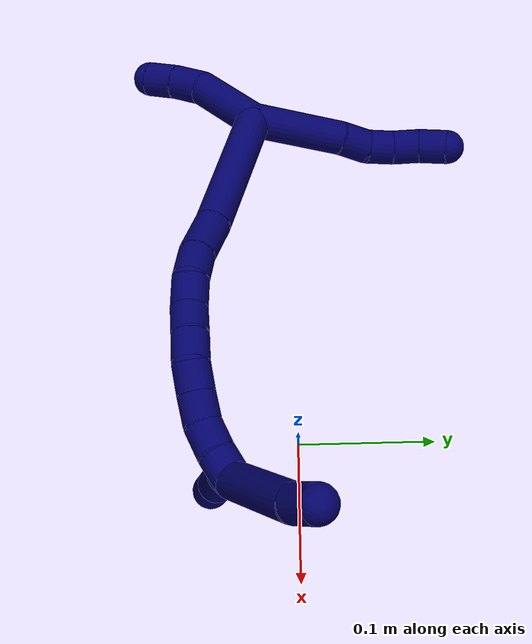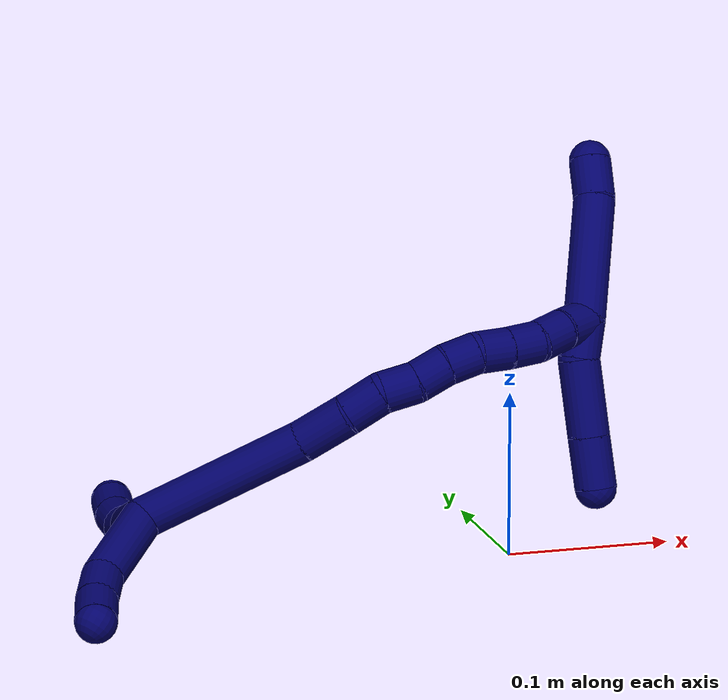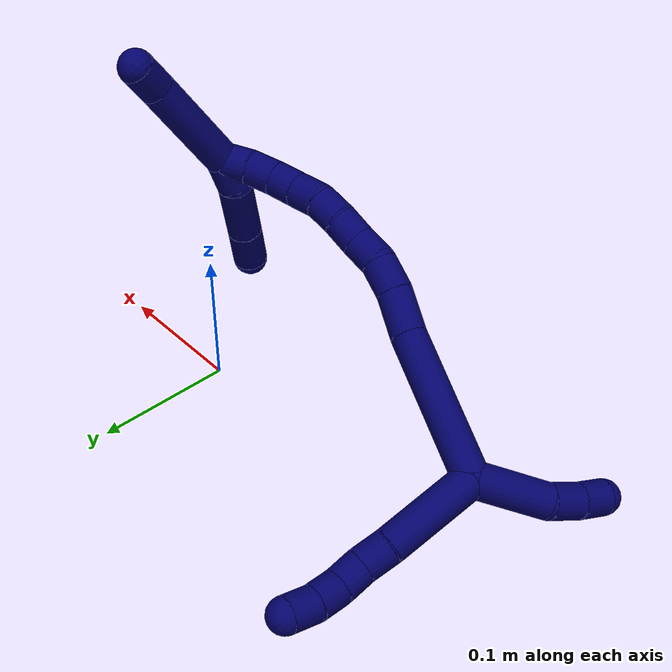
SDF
<sdf version="1.7">
 <world name="default">
  <model name="7">
   <static>0</static>
   <link name="7">
    <collision name="collision-cylinder-e_1_2_8">
     <pose>0.005574 0.033004 0.003979 -1.45082 0.166141 -0.147387</pose>
     <geometry><cylinder><radius>0.0125</radius><length>0.067415</length></cylinder></geometry>
     <surface>
      <friction><ode><mu>1.16</mu><mu2>1.16</mu2><slip1>0</slip1><slip2>0</slip2></ode></friction>
      <contact><ode><kp>1e+06</kp><kd>1</kd><max_vel>0</max_vel><min_depth>0.001</min_depth></ode></contact>
     </surface>
    </collision>
    <visual name="visual-cylinder-e_1_2_8">
     <pose>0.005574 0.033004 0.003979 -1.45082 0.166141 -0.147387</pose>
     <geometry><cylinder><radius>0.0125</radius><length>0.067415</length></cylinder></geometry>
     <material><ambient>0.003922 0 0.403922 1</ambient></material>
    </visual>
    <collision name="collision-cylinder-e_2_8_9">
     <pose>0.014061 0.076219 0.009411 -1.42937 0.275207 -0.239172</pose>
     <geometry><cylinder><radius>0.0125</radius><length>0.021435</length></cylinder></geometry>
     <surface>
      <friction><ode><mu>1.16</mu><mu2>1.16</mu2><slip1>0</slip1><slip2>0</slip2></ode></friction>
      <contact><ode><kp>1e+06</kp><kd>1</kd><max_vel>0</max_vel><min_depth>0.001</min_depth></ode></contact>
     </surface>
    </collision>
    <visual name="visual-cylinder-e_2_8_9">
     <pose>0.014061 0.076219 0.009411 -1.42937 0.275207 -0.239172</pose>
     <geometry><cylinder><radius>0.0125</radius><length>0.021435</length></cylinder></geometry>
     <material><ambient>0.003922 0 0.403922 1</ambient></material>
    </visual>
    <collision name="collision-cylinder-e_3_9_10">
     <pose>0.017008 0.096363 0.012212 -1.43602 0.003439 -0.003004</pose>
     <geometry><cylinder><radius>0.0125</radius><length>0.020046</length></cylinder></geometry>
     <surface>
      <friction><ode><mu>1.16</mu><mu2>1.16</mu2><slip1>0</slip1><slip2>0</slip2></ode></friction>
      <contact><ode><kp>1e+06</kp><kd>1</kd><max_vel>0</max_vel><min_depth>0.001</min_depth></ode></contact>
     </surface>
    </collision>
    <visual name="visual-cylinder-e_3_9_10">
     <pose>0.017008 0.096363 0.012212 -1.43602 0.003439 -0.003004</pose>
     <geometry><cylinder><radius>0.0125</radius><length>0.020046</length></cylinder></geometry>
     <material><ambient>0.003922 0 0.403922 1</ambient></material>
    </visual>
    <collision name="collision-cylinder-e_4_10_11">
     <pose>0.015273 0.115678 0.016942 -1.22468 -0.175541 0.123462</pose>
     <geometry><cylinder><radius>0.0125</radius><length>0.02026</length></cylinder></geometry>
     <surface>
      <friction><ode><mu>1.16</mu><mu2>1.16</mu2><slip1>0</slip1><slip2>0</slip2></ode></friction>
      <contact><ode><kp>1e+06</kp><kd>1</kd><max_vel>0</max_vel><min_depth>0.001</min_depth></ode></contact>
     </surface>
    </collision>
    <visual name="visual-cylinder-e_4_10_11">
     <pose>0.015273 0.115678 0.016942 -1.22468 -0.175541 0.123462</pose>
     <geometry><cylinder><radius>0.0125</radius><length>0.02026</length></cylinder></geometry>
     <material><ambient>0.003922 0 0.403922 1</ambient></material>
    </visual>
    <collision name="collision-cylinder-e_5_11_6">
     <pose>0.012136 0.133953 0.025587 -1.03655 -0.131645 0.075146</pose>
     <geometry><cylinder><radius>0.0125</radius><length>0.020844</length></cylinder></geometry>
     <surface>
      <friction><ode><mu>1.16</mu><mu2>1.16</mu2><slip1>0</slip1><slip2>0</slip2></ode></friction>
      <contact><ode><kp>1e+06</kp><kd>1</kd><max_vel>0</max_vel><min_depth>0.001</min_depth></ode></contact>
     </surface>
    </collision>
    <visual name="visual-cylinder-e_5_11_6">
     <pose>0.012136 0.133953 0.025587 -1.03655 -0.131645 0.075146</pose>
     <geometry><cylinder><radius>0.0125</radius><length>0.020844</length></cylinder></geometry>
     <material><ambient>0.003922 0 0.403922 1</ambient></material>
    </visual>
    <collision name="collision-cylinder-e_1_2_12">
     <pose>-0.004449 -0.012965 -0.023829 2.64329 -0.162564 -0.619699</pose>
     <geometry><cylinder><radius>0.0125</radius><length>0.054981</length></cylinder></geometry>
     <surface>
      <friction><ode><mu>1.16</mu><mu2>1.16</mu2><slip1>0</slip1><slip2>0</slip2></ode></friction>
      <contact><ode><kp>1e+06</kp><kd>1</kd><max_vel>0</max_vel><min_depth>0.001</min_depth></ode></contact>
     </surface>
    </collision>
    <visual name="visual-cylinder-e_1_2_12">
     <pose>-0.004449 -0.012965 -0.023829 2.64329 -0.162564 -0.619699</pose>
     <geometry><cylinder><radius>0.0125</radius><length>0.054981</length></cylinder></geometry>
     <material><ambient>0.003922 0 0.403922 1</ambient></material>
    </visual>
    <collision name="collision-cylinder-e_2_12_13">
     <pose>-0.008609 -0.033915 -0.056178 2.38869 0.024761 0.062622</pose>
     <geometry><cylinder><radius>0.0125</radius><length>0.02336</length></cylinder></geometry>
     <surface>
      <friction><ode><mu>1.16</mu><mu2>1.16</mu2><slip1>0</slip1><slip2>0</slip2></ode></friction>
      <contact><ode><kp>1e+06</kp><kd>1</kd><max_vel>0</max_vel><min_depth>0.001</min_depth></ode></contact>
     </surface>
    </collision>
    <visual name="visual-cylinder-e_2_12_13">
     <pose>-0.008609 -0.033915 -0.056178 2.38869 0.024761 0.062622</pose>
     <geometry><cylinder><radius>0.0125</radius><length>0.02336</length></cylinder></geometry>
     <material><ambient>0.003922 0 0.403922 1</ambient></material>
    </visual>
    <collision name="collision-cylinder-e_3_13_5">
     <pose>-0.00722 -0.050051 -0.071742 2.28336 0.101751 0.221663</pose>
     <geometry><cylinder><radius>0.0125</radius><length>0.02166</length></cylinder></geometry>
     <surface>
      <friction><ode><mu>1.16</mu><mu2>1.16</mu2><slip1>0</slip1><slip2>0</slip2></ode></friction>
      <contact><ode><kp>1e+06</kp><kd>1</kd><max_vel>0</max_vel><min_depth>0.001</min_depth></ode></contact>
     </surface>
    </collision>
    <visual name="visual-cylinder-e_3_13_5">
     <pose>-0.00722 -0.050051 -0.071742 2.28336 0.101751 0.221663</pose>
     <geometry><cylinder><radius>0.0125</radius><length>0.02166</length></cylinder></geometry>
     <material><ambient>0.003922 0 0.403922 1</ambient></material>
    </visual>
    <collision name="collision-cylinder-e_1_2_14">
     <pose>0.023391 -0.024458 0.039447 0.55501 0.466815 0.135237</pose>
     <geometry><cylinder><radius>0.0125</radius><length>0.10395</length></cylinder></geometry>
     <surface>
      <friction><ode><mu>1.16</mu><mu2>1.16</mu2><slip1>0</slip1><slip2>0</slip2></ode></friction>
      <contact><ode><kp>1e+06</kp><kd>1</kd><max_vel>0</max_vel><min_depth>0.001</min_depth></ode></contact>
     </surface>
    </collision>
    <visual name="visual-cylinder-e_1_2_14">
     <pose>0.023391 -0.024458 0.039447 0.55501 0.466815 0.135237</pose>
     <geometry><cylinder><radius>0.0125</radius><length>0.10395</length></cylinder></geometry>
     <material><ambient>0.003922 0 0.403922 1</ambient></material>
    </visual>
    <collision name="collision-cylinder-e_2_14_15">
     <pose>0.05232 -0.057308 0.090945 0.608321 0.360614 0.114315</pose>
     <geometry><cylinder><radius>0.0125</radius><length>0.03139</length></cylinder></geometry>
     <surface>
      <friction><ode><mu>1.16</mu><mu2>1.16</mu2><slip1>0</slip1><slip2>0</slip2></ode></friction>
      <contact><ode><kp>1e+06</kp><kd>1</kd><max_vel>0</max_vel><min_depth>0.001</min_depth></ode></contact>
     </surface>
    </collision>
    <visual name="visual-cylinder-e_2_14_15">
     <pose>0.05232 -0.057308 0.090945 0.608321 0.360614 0.114315</pose>
     <geometry><cylinder><radius>0.0125</radius><length>0.03139</length></cylinder></geometry>
     <material><ambient>0.003922 0 0.403922 1</ambient></material>
    </visual>
    <collision name="collision-cylinder-e_3_15_16">
     <pose>0.062248 -0.0701 0.112858 0.419598 0.386079 0.083197</pose>
     <geometry><cylinder><radius>0.0125</radius><length>0.023315</length></cylinder></geometry>
     <surface>
      <friction><ode><mu>1.16</mu><mu2>1.16</mu2><slip1>0</slip1><slip2>0</slip2></ode></friction>
      <contact><ode><kp>1e+06</kp><kd>1</kd><max_vel>0</max_vel><min_depth>0.001</min_depth></ode></contact>
     </surface>
    </collision>
    <visual name="visual-cylinder-e_3_15_16">
     <pose>0.062248 -0.0701 0.112858 0.419598 0.386079 0.083197</pose>
     <geometry><cylinder><radius>0.0125</radius><length>0.023315</length></cylinder></geometry>
     <material><ambient>0.003922 0 0.403922 1</ambient></material>
    </visual>
    <collision name="collision-cylinder-e_4_16_17">
     <pose>0.073455 -0.076599 0.130631 0.259377 0.694538 0.094338</pose>
     <geometry><cylinder><radius>0.0125</radius><length>0.021304</length></cylinder></geometry>
     <surface>
      <friction><ode><mu>1.16</mu><mu2>1.16</mu2><slip1>0</slip1><slip2>0</slip2></ode></friction>
      <contact><ode><kp>1e+06</kp><kd>1</kd><max_vel>0</max_vel><min_depth>0.001</min_depth></ode></contact>
     </surface>
    </collision>
    <visual name="visual-cylinder-e_4_16_17">
     <pose>0.073455 -0.076599 0.130631 0.259377 0.694538 0.094338</pose>
     <geometry><cylinder><radius>0.0125</radius><length>0.021304</length></cylinder></geometry>
     <material><ambient>0.003922 0 0.403922 1</ambient></material>
    </visual>
    <collision name="collision-cylinder-e_5_17_18">
     <pose>0.084815 -0.080361 0.147311 0.187417 0.47075 0.045071</pose>
     <geometry><cylinder><radius>0.0125</radius><length>0.020029</length></cylinder></geometry>
     <surface>
      <friction><ode><mu>1.16</mu><mu2>1.16</mu2><slip1>0</slip1><slip2>0</slip2></ode></friction>
      <contact><ode><kp>1e+06</kp><kd>1</kd><max_vel>0</max_vel><min_depth>0.001</min_depth></ode></contact>
     </surface>
    </collision>
    <visual name="visual-cylinder-e_5_17_18">
     <pose>0.084815 -0.080361 0.147311 0.187417 0.47075 0.045071</pose>
     <geometry><cylinder><radius>0.0125</radius><length>0.020029</length></cylinder></geometry>
     <material><ambient>0.003922 0 0.403922 1</ambient></material>
    </visual>
    <collision name="collision-cylinder-e_6_18_19">
     <pose>0.095257 -0.083431 0.164031 0.175068 0.631076 0.057281</pose>
     <geometry><cylinder><radius>0.0125</radius><length>0.020001</length></cylinder></geometry>
     <surface>
      <friction><ode><mu>1.16</mu><mu2>1.16</mu2><slip1>0</slip1><slip2>0</slip2></ode></friction>
      <contact><ode><kp>1e+06</kp><kd>1</kd><max_vel>0</max_vel><min_depth>0.001</min_depth></ode></contact>
     </surface>
    </collision>
    <visual name="visual-cylinder-e_6_18_19">
     <pose>0.095257 -0.083431 0.164031 0.175068 0.631076 0.057281</pose>
     <geometry><cylinder><radius>0.0125</radius><length>0.020001</length></cylinder></geometry>
     <material><ambient>0.003922 0 0.403922 1</ambient></material>
    </visual>
    <collision name="collision-cylinder-e_7_19_20">
     <pose>0.108687 -0.084286 0.178546 -0.083682 0.852009 -0.037992</pose>
     <geometry><cylinder><radius>0.0125</radius><length>0.020008</length></cylinder></geometry>
     <surface>
      <friction><ode><mu>1.16</mu><mu2>1.16</mu2><slip1>0</slip1><slip2>0</slip2></ode></friction>
      <contact><ode><kp>1e+06</kp><kd>1</kd><max_vel>0</max_vel><min_depth>0.001</min_depth></ode></contact>
     </surface>
    </collision>
    <visual name="visual-cylinder-e_7_19_20">
     <pose>0.108687 -0.084286 0.178546 -0.083682 0.852009 -0.037992</pose>
     <geometry><cylinder><radius>0.0125</radius><length>0.020008</length></cylinder></geometry>
     <material><ambient>0.003922 0 0.403922 1</ambient></material>
    </visual>
    <collision name="collision-cylinder-e_8_20_21">
     <pose>0.123299 -0.082969 0.19213 -0.108866 0.786924 -0.045228</pose>
     <geometry><cylinder><radius>0.0125</radius><length>0.020002</length></cylinder></geometry>
     <surface>
      <friction><ode><mu>1.16</mu><mu2>1.16</mu2><slip1>0</slip1><slip2>0</slip2></ode></friction>
      <contact><ode><kp>1e+06</kp><kd>1</kd><max_vel>0</max_vel><min_depth>0.001</min_depth></ode></contact>
     </surface>
    </collision>
    <visual name="visual-cylinder-e_8_20_21">
     <pose>0.123299 -0.082969 0.19213 -0.108866 0.786924 -0.045228</pose>
     <geometry><cylinder><radius>0.0125</radius><length>0.020002</length></cylinder></geometry>
     <material><ambient>0.003922 0 0.403922 1</ambient></material>
    </visual>
    <collision name="collision-cylinder-e_9_21_22">
     <pose>0.135757 -0.0798 0.207233 -0.288823 0.56749 -0.084764</pose>
     <geometry><cylinder><radius>0.0125</radius><length>0.02</length></cylinder></geometry>
     <surface>
      <friction><ode><mu>1.16</mu><mu2>1.16</mu2><slip1>0</slip1><slip2>0</slip2></ode></friction>
      <contact><ode><kp>1e+06</kp><kd>1</kd><max_vel>0</max_vel><min_depth>0.001</min_depth></ode></contact>
     </surface>
    </collision>
    <visual name="visual-cylinder-e_9_21_22">
     <pose>0.135757 -0.0798 0.207233 -0.288823 0.56749 -0.084764</pose>
     <geometry><cylinder><radius>0.0125</radius><length>0.02</length></cylinder></geometry>
     <material><ambient>0.003922 0 0.403922 1</ambient></material>
    </visual>
    <collision name="collision-cylinder-e_10_22_1">
     <pose>0.146666 -0.073729 0.222794 -0.456099 0.586491 -0.139929</pose>
     <geometry><cylinder><radius>0.0125</radius><length>0.020001</length></cylinder></geometry>
     <surface>
      <friction><ode><mu>1.16</mu><mu2>1.16</mu2><slip1>0</slip1><slip2>0</slip2></ode></friction>
      <contact><ode><kp>1e+06</kp><kd>1</kd><max_vel>0</max_vel><min_depth>0.001</min_depth></ode></contact>
     </surface>
    </collision>
    <visual name="visual-cylinder-e_10_22_1">
     <pose>0.146666 -0.073729 0.222794 -0.456099 0.586491 -0.139929</pose>
     <geometry><cylinder><radius>0.0125</radius><length>0.020001</length></cylinder></geometry>
     <material><ambient>0.003922 0 0.403922 1</ambient></material>
    </visual>
    <collision name="collision-cylinder-e_1_1_23">
     <pose>0.156993 -0.068703 0.219895 -3.0115 0.429436 -2.56107</pose>
     <geometry><cylinder><radius>0.0125</radius><length>0.02302</length></cylinder></geometry>
     <surface>
      <friction><ode><mu>1.16</mu><mu2>1.16</mu2><slip1>0</slip1><slip2>0</slip2></ode></friction>
      <contact><ode><kp>1e+06</kp><kd>1</kd><max_vel>0</max_vel><min_depth>0.001</min_depth></ode></contact>
     </surface>
    </collision>
    <visual name="visual-cylinder-e_1_1_23">
     <pose>0.156993 -0.068703 0.219895 -3.0115 0.429436 -2.56107</pose>
     <geometry><cylinder><radius>0.0125</radius><length>0.02302</length></cylinder></geometry>
     <material><ambient>0.003922 0 0.403922 1</ambient></material>
    </visual>
    <collision name="collision-cylinder-e_2_23_24">
     <pose>0.177031 -0.064454 0.192546 -2.97284 0.724751 -2.70262</pose>
     <geometry><cylinder><radius>0.0125</radius><length>0.045994</length></cylinder></geometry>
     <surface>
      <friction><ode><mu>1.16</mu><mu2>1.16</mu2><slip1>0</slip1><slip2>0</slip2></ode></friction>
      <contact><ode><kp>1e+06</kp><kd>1</kd><max_vel>0</max_vel><min_depth>0.001</min_depth></ode></contact>
     </surface>
    </collision>
    <visual name="visual-cylinder-e_2_23_24">
     <pose>0.177031 -0.064454 0.192546 -2.97284 0.724751 -2.70262</pose>
     <geometry><cylinder><radius>0.0125</radius><length>0.045994</length></cylinder></geometry>
     <material><ambient>0.003922 0 0.403922 1</ambient></material>
    </visual>
    <collision name="collision-cylinder-e_3_24_4">
     <pose>0.202652 -0.059528 0.164248 -2.96385 0.733702 -2.68586</pose>
     <geometry><cylinder><radius>0.0125</radius><length>0.030986</length></cylinder></geometry>
     <surface>
      <friction><ode><mu>1.16</mu><mu2>1.16</mu2><slip1>0</slip1><slip2>0</slip2></ode></friction>
      <contact><ode><kp>1e+06</kp><kd>1</kd><max_vel>0</max_vel><min_depth>0.001</min_depth></ode></contact>
     </surface>
    </collision>
    <visual name="visual-cylinder-e_3_24_4">
     <pose>0.202652 -0.059528 0.164248 -2.96385 0.733702 -2.68586</pose>
     <geometry><cylinder><radius>0.0125</radius><length>0.030986</length></cylinder></geometry>
     <material><ambient>0.003922 0 0.403922 1</ambient></material>
    </visual>
    <collision name="collision-cylinder-e_1_1_25">
     <pose>0.138203 -0.063563 0.264886 -0.185553 -0.378319 0.035622</pose>
     <geometry><cylinder><radius>0.0125</radius><length>0.075799</length></cylinder></geometry>
     <surface>
      <friction><ode><mu>1.16</mu><mu2>1.16</mu2><slip1>0</slip1><slip2>0</slip2></ode></friction>
      <contact><ode><kp>1e+06</kp><kd>1</kd><max_vel>0</max_vel><min_depth>0.001</min_depth></ode></contact>
     </surface>
    </collision>
    <visual name="visual-cylinder-e_1_1_25">
     <pose>0.138203 -0.063563 0.264886 -0.185553 -0.378319 0.035622</pose>
     <geometry><cylinder><radius>0.0125</radius><length>0.075799</length></cylinder></geometry>
     <material><ambient>0.003922 0 0.403922 1</ambient></material>
    </visual>
    <collision name="collision-cylinder-e_2_25_3">
     <pose>0.117977 -0.05416 0.309461 -0.28384 -0.540565 0.079132</pose>
     <geometry><cylinder><radius>0.0125</radius><length>0.024201</length></cylinder></geometry>
     <surface>
      <friction><ode><mu>1.16</mu><mu2>1.16</mu2><slip1>0</slip1><slip2>0</slip2></ode></friction>
      <contact><ode><kp>1e+06</kp><kd>1</kd><max_vel>0</max_vel><min_depth>0.001</min_depth></ode></contact>
     </surface>
    </collision>
    <visual name="visual-cylinder-e_2_25_3">
     <pose>0.117977 -0.05416 0.309461 -0.28384 -0.540565 0.079132</pose>
     <geometry><cylinder><radius>0.0125</radius><length>0.024201</length></cylinder></geometry>
     <material><ambient>0.003922 0 0.403922 1</ambient></material>
    </visual>
    <collision name="collision-sphere-3">
     <pose>0.11175 -0.051254 0.319422 0 -0 0</pose>
     <geometry><sphere><radius>0.0125</radius></sphere></geometry>
     <surface>
      <friction><ode><mu>1.16</mu><mu2>1.16</mu2><slip1>0</slip1><slip2>0</slip2></ode></friction>
      <contact><ode><kp>1e+06</kp><kd>1</kd><max_vel>0</max_vel><min_depth>0.001</min_depth></ode></contact>
     </surface>
    </collision>
    <visual name="visual-sphere-3">
     <pose>0.11175 -0.051254 0.319422 0 -0 0</pose>
     <geometry><sphere><radius>0.0125</radius></sphere></geometry>
     <material><ambient>0.003922 0 0.403922 1</ambient></material>
    </visual>
    <collision name="collision-sphere-25">
     <pose>0.124204 -0.057065 0.299501 0 -0 0</pose>
     <geometry><sphere><radius>0.0125</radius></sphere></geometry>
     <surface>
      <friction><ode><mu>1.16</mu><mu2>1.16</mu2><slip1>0</slip1><slip2>0</slip2></ode></friction>
      <contact><ode><kp>1e+06</kp><kd>1</kd><max_vel>0</max_vel><min_depth>0.001</min_depth></ode></contact>
     </surface>
    </collision>
    <visual name="visual-sphere-25">
     <pose>0.124204 -0.057065 0.299501 0 -0 0</pose>
     <geometry><sphere><radius>0.0125</radius></sphere></geometry>
     <material><ambient>0.003922 0 0.403922 1</ambient></material>
    </visual>
    <collision name="collision-sphere-4">
     <pose>0.213026 -0.057493 0.152923 0 -0 0</pose>
     <geometry><sphere><radius>0.0125</radius></sphere></geometry>
     <surface>
      <friction><ode><mu>1.16</mu><mu2>1.16</mu2><slip1>0</slip1><slip2>0</slip2></ode></friction>
      <contact><ode><kp>1e+06</kp><kd>1</kd><max_vel>0</max_vel><min_depth>0.001</min_depth></ode></contact>
     </surface>
    </collision>
    <visual name="visual-sphere-4">
     <pose>0.213026 -0.057493 0.152923 0 -0 0</pose>
     <geometry><sphere><radius>0.0125</radius></sphere></geometry>
     <material><ambient>0.003922 0 0.403922 1</ambient></material>
    </visual>
    <collision name="collision-sphere-24">
     <pose>0.192277 -0.061562 0.175574 0 -0 0</pose>
     <geometry><sphere><radius>0.0125</radius></sphere></geometry>
     <surface>
      <friction><ode><mu>1.16</mu><mu2>1.16</mu2><slip1>0</slip1><slip2>0</slip2></ode></friction>
      <contact><ode><kp>1e+06</kp><kd>1</kd><max_vel>0</max_vel><min_depth>0.001</min_depth></ode></contact>
     </surface>
    </collision>
    <visual name="visual-sphere-24">
     <pose>0.192277 -0.061562 0.175574 0 -0 0</pose>
     <geometry><sphere><radius>0.0125</radius></sphere></geometry>
     <material><ambient>0.003922 0 0.403922 1</ambient></material>
    </visual>
    <collision name="collision-sphere-23">
     <pose>0.161785 -0.067345 0.209519 0 -0 0</pose>
     <geometry><sphere><radius>0.0125</radius></sphere></geometry>
     <surface>
      <friction><ode><mu>1.16</mu><mu2>1.16</mu2><slip1>0</slip1><slip2>0</slip2></ode></friction>
      <contact><ode><kp>1e+06</kp><kd>1</kd><max_vel>0</max_vel><min_depth>0.001</min_depth></ode></contact>
     </surface>
    </collision>
    <visual name="visual-sphere-23">
     <pose>0.161785 -0.067345 0.209519 0 -0 0</pose>
     <geometry><sphere><radius>0.0125</radius></sphere></geometry>
     <material><ambient>0.003922 0 0.403922 1</ambient></material>
    </visual>
    <collision name="collision-sphere-1">
     <pose>0.152201 -0.070061 0.230272 0 -0 0</pose>
     <geometry><sphere><radius>0.0125</radius></sphere></geometry>
     <surface>
      <friction><ode><mu>1.16</mu><mu2>1.16</mu2><slip1>0</slip1><slip2>0</slip2></ode></friction>
      <contact><ode><kp>1e+06</kp><kd>1</kd><max_vel>0</max_vel><min_depth>0.001</min_depth></ode></contact>
     </surface>
    </collision>
    <visual name="visual-sphere-1">
     <pose>0.152201 -0.070061 0.230272 0 -0 0</pose>
     <geometry><sphere><radius>0.0125</radius></sphere></geometry>
     <material><ambient>0.003922 0 0.403922 1</ambient></material>
    </visual>
    <collision name="collision-sphere-22">
     <pose>0.141132 -0.077398 0.215316 0 -0 0</pose>
     <geometry><sphere><radius>0.0125</radius></sphere></geometry>
     <surface>
      <friction><ode><mu>1.16</mu><mu2>1.16</mu2><slip1>0</slip1><slip2>0</slip2></ode></friction>
      <contact><ode><kp>1e+06</kp><kd>1</kd><max_vel>0</max_vel><min_depth>0.001</min_depth></ode></contact>
     </surface>
    </collision>
    <visual name="visual-sphere-22">
     <pose>0.141132 -0.077398 0.215316 0 -0 0</pose>
     <geometry><sphere><radius>0.0125</radius></sphere></geometry>
     <material><ambient>0.003922 0 0.403922 1</ambient></material>
    </visual>
    <collision name="collision-sphere-21">
     <pose>0.130381 -0.082201 0.199149 0 -0 0</pose>
     <geometry><sphere><radius>0.0125</radius></sphere></geometry>
     <surface>
      <friction><ode><mu>1.16</mu><mu2>1.16</mu2><slip1>0</slip1><slip2>0</slip2></ode></friction>
      <contact><ode><kp>1e+06</kp><kd>1</kd><max_vel>0</max_vel><min_depth>0.001</min_depth></ode></contact>
     </surface>
    </collision>
    <visual name="visual-sphere-21">
     <pose>0.130381 -0.082201 0.199149 0 -0 0</pose>
     <geometry><sphere><radius>0.0125</radius></sphere></geometry>
     <material><ambient>0.003922 0 0.403922 1</ambient></material>
    </visual>
    <collision name="collision-sphere-6">
     <pose>0.010768 0.142845 0.030848 0 -0 0</pose>
     <geometry><sphere><radius>0.0125</radius></sphere></geometry>
     <surface>
      <friction><ode><mu>1.16</mu><mu2>1.16</mu2><slip1>0</slip1><slip2>0</slip2></ode></friction>
      <contact><ode><kp>1e+06</kp><kd>1</kd><max_vel>0</max_vel><min_depth>0.001</min_depth></ode></contact>
     </surface>
    </collision>
    <visual name="visual-sphere-6">
     <pose>0.010768 0.142845 0.030848 0 -0 0</pose>
     <geometry><sphere><radius>0.0125</radius></sphere></geometry>
     <material><ambient>0.003922 0 0.403922 1</ambient></material>
    </visual>
    <collision name="collision-sphere-11">
     <pose>0.013504 0.125061 0.020326 0 -0 0</pose>
     <geometry><sphere><radius>0.0125</radius></sphere></geometry>
     <surface>
      <friction><ode><mu>1.16</mu><mu2>1.16</mu2><slip1>0</slip1><slip2>0</slip2></ode></friction>
      <contact><ode><kp>1e+06</kp><kd>1</kd><max_vel>0</max_vel><min_depth>0.001</min_depth></ode></contact>
     </surface>
    </collision>
    <visual name="visual-sphere-11">
     <pose>0.013504 0.125061 0.020326 0 -0 0</pose>
     <geometry><sphere><radius>0.0125</radius></sphere></geometry>
     <material><ambient>0.003922 0 0.403922 1</ambient></material>
    </visual>
    <collision name="collision-sphere-10">
     <pose>0.017043 0.106295 0.013559 0 -0 0</pose>
     <geometry><sphere><radius>0.0125</radius></sphere></geometry>
     <surface>
      <friction><ode><mu>1.16</mu><mu2>1.16</mu2><slip1>0</slip1><slip2>0</slip2></ode></friction>
      <contact><ode><kp>1e+06</kp><kd>1</kd><max_vel>0</max_vel><min_depth>0.001</min_depth></ode></contact>
     </surface>
    </collision>
    <visual name="visual-sphere-10">
     <pose>0.017043 0.106295 0.013559 0 -0 0</pose>
     <geometry><sphere><radius>0.0125</radius></sphere></geometry>
     <material><ambient>0.003922 0 0.403922 1</ambient></material>
    </visual>
    <collision name="collision-sphere-9">
     <pose>0.016974 0.08643 0.010865 0 -0 0</pose>
     <geometry><sphere><radius>0.0125</radius></sphere></geometry>
     <surface>
      <friction><ode><mu>1.16</mu><mu2>1.16</mu2><slip1>0</slip1><slip2>0</slip2></ode></friction>
      <contact><ode><kp>1e+06</kp><kd>1</kd><max_vel>0</max_vel><min_depth>0.001</min_depth></ode></contact>
     </surface>
    </collision>
    <visual name="visual-sphere-9">
     <pose>0.016974 0.08643 0.010865 0 -0 0</pose>
     <geometry><sphere><radius>0.0125</radius></sphere></geometry>
     <material><ambient>0.003922 0 0.403922 1</ambient></material>
    </visual>
    <collision name="collision-sphere-2">
     <geometry><sphere><radius>0.0125</radius></sphere></geometry>
     <surface>
      <friction><ode><mu>1.16</mu><mu2>1.16</mu2><slip1>0</slip1><slip2>0</slip2></ode></friction>
      <contact><ode><kp>1e+06</kp><kd>1</kd><max_vel>0</max_vel><min_depth>0.001</min_depth></ode></contact>
     </surface>
    </collision>
    <visual name="visual-sphere-2">
     <geometry><sphere><radius>0.0125</radius></sphere></geometry>
     <material><ambient>0.003922 0 0.403922 1</ambient></material>
    </visual>
    <collision name="collision-sphere-19">
     <pose>0.101158 -0.084837 0.171982 0 -0 0</pose>
     <geometry><sphere><radius>0.0125</radius></sphere></geometry>
     <surface>
      <friction><ode><mu>1.16</mu><mu2>1.16</mu2><slip1>0</slip1><slip2>0</slip2></ode></friction>
      <contact><ode><kp>1e+06</kp><kd>1</kd><max_vel>0</max_vel><min_depth>0.001</min_depth></ode></contact>
     </surface>
    </collision>
    <visual name="visual-sphere-19">
     <pose>0.101158 -0.084837 0.171982 0 -0 0</pose>
     <geometry><sphere><radius>0.0125</radius></sphere></geometry>
     <material><ambient>0.003922 0 0.403922 1</ambient></material>
    </visual>
    <collision name="collision-sphere-8">
     <pose>0.011149 0.066008 0.007958 0 -0 0</pose>
     <geometry><sphere><radius>0.0125</radius></sphere></geometry>
     <surface>
      <friction><ode><mu>1.16</mu><mu2>1.16</mu2><slip1>0</slip1><slip2>0</slip2></ode></friction>
      <contact><ode><kp>1e+06</kp><kd>1</kd><max_vel>0</max_vel><min_depth>0.001</min_depth></ode></contact>
     </surface>
    </collision>
    <visual name="visual-sphere-8">
     <pose>0.011149 0.066008 0.007958 0 -0 0</pose>
     <geometry><sphere><radius>0.0125</radius></sphere></geometry>
     <material><ambient>0.003922 0 0.403922 1</ambient></material>
    </visual>
    <collision name="collision-sphere-12">
     <pose>-0.008899 -0.025931 -0.047658 0 -0 0</pose>
     <geometry><sphere><radius>0.0125</radius></sphere></geometry>
     <surface>
      <friction><ode><mu>1.16</mu><mu2>1.16</mu2><slip1>0</slip1><slip2>0</slip2></ode></friction>
      <contact><ode><kp>1e+06</kp><kd>1</kd><max_vel>0</max_vel><min_depth>0.001</min_depth></ode></contact>
     </surface>
    </collision>
    <visual name="visual-sphere-12">
     <pose>-0.008899 -0.025931 -0.047658 0 -0 0</pose>
     <geometry><sphere><radius>0.0125</radius></sphere></geometry>
     <material><ambient>0.003922 0 0.403922 1</ambient></material>
    </visual>
    <collision name="collision-sphere-13">
     <pose>-0.00832 -0.041898 -0.064699 0 -0 0</pose>
     <geometry><sphere><radius>0.0125</radius></sphere></geometry>
     <surface>
      <friction><ode><mu>1.16</mu><mu2>1.16</mu2><slip1>0</slip1><slip2>0</slip2></ode></friction>
      <contact><ode><kp>1e+06</kp><kd>1</kd><max_vel>0</max_vel><min_depth>0.001</min_depth></ode></contact>
     </surface>
    </collision>
    <visual name="visual-sphere-13">
     <pose>-0.00832 -0.041898 -0.064699 0 -0 0</pose>
     <geometry><sphere><radius>0.0125</radius></sphere></geometry>
     <material><ambient>0.003922 0 0.403922 1</ambient></material>
    </visual>
    <collision name="collision-sphere-5">
     <pose>-0.00612 -0.058203 -0.078786 0 -0 0</pose>
     <geometry><sphere><radius>0.0125</radius></sphere></geometry>
     <surface>
      <friction><ode><mu>1.16</mu><mu2>1.16</mu2><slip1>0</slip1><slip2>0</slip2></ode></friction>
      <contact><ode><kp>1e+06</kp><kd>1</kd><max_vel>0</max_vel><min_depth>0.001</min_depth></ode></contact>
     </surface>
    </collision>
    <visual name="visual-sphere-5">
     <pose>-0.00612 -0.058203 -0.078786 0 -0 0</pose>
     <geometry><sphere><radius>0.0125</radius></sphere></geometry>
     <material><ambient>0.003922 0 0.403922 1</ambient></material>
    </visual>
    <collision name="collision-sphere-14">
     <pose>0.046782 -0.048916 0.078894 0 -0 0</pose>
     <geometry><sphere><radius>0.0125</radius></sphere></geometry>
     <surface>
      <friction><ode><mu>1.16</mu><mu2>1.16</mu2><slip1>0</slip1><slip2>0</slip2></ode></friction>
      <contact><ode><kp>1e+06</kp><kd>1</kd><max_vel>0</max_vel><min_depth>0.001</min_depth></ode></contact>
     </surface>
    </collision>
    <visual name="visual-sphere-14">
     <pose>0.046782 -0.048916 0.078894 0 -0 0</pose>
     <geometry><sphere><radius>0.0125</radius></sphere></geometry>
     <material><ambient>0.003922 0 0.403922 1</ambient></material>
    </visual>
    <collision name="collision-sphere-15">
     <pose>0.057858 -0.065701 0.102996 0 -0 0</pose>
     <geometry><sphere><radius>0.0125</radius></sphere></geometry>
     <surface>
      <friction><ode><mu>1.16</mu><mu2>1.16</mu2><slip1>0</slip1><slip2>0</slip2></ode></friction>
      <contact><ode><kp>1e+06</kp><kd>1</kd><max_vel>0</max_vel><min_depth>0.001</min_depth></ode></contact>
     </surface>
    </collision>
    <visual name="visual-sphere-15">
     <pose>0.057858 -0.065701 0.102996 0 -0 0</pose>
     <geometry><sphere><radius>0.0125</radius></sphere></geometry>
     <material><ambient>0.003922 0 0.403922 1</ambient></material>
    </visual>
    <collision name="collision-sphere-16">
     <pose>0.066637 -0.0745 0.122721 0 -0 0</pose>
     <geometry><sphere><radius>0.0125</radius></sphere></geometry>
     <surface>
      <friction><ode><mu>1.16</mu><mu2>1.16</mu2><slip1>0</slip1><slip2>0</slip2></ode></friction>
      <contact><ode><kp>1e+06</kp><kd>1</kd><max_vel>0</max_vel><min_depth>0.001</min_depth></ode></contact>
     </surface>
    </collision>
    <visual name="visual-sphere-16">
     <pose>0.066637 -0.0745 0.122721 0 -0 0</pose>
     <geometry><sphere><radius>0.0125</radius></sphere></geometry>
     <material><ambient>0.003922 0 0.403922 1</ambient></material>
    </visual>
    <collision name="collision-sphere-17">
     <pose>0.080272 -0.078698 0.138542 0 -0 0</pose>
     <geometry><sphere><radius>0.0125</radius></sphere></geometry>
     <surface>
      <friction><ode><mu>1.16</mu><mu2>1.16</mu2><slip1>0</slip1><slip2>0</slip2></ode></friction>
      <contact><ode><kp>1e+06</kp><kd>1</kd><max_vel>0</max_vel><min_depth>0.001</min_depth></ode></contact>
     </surface>
    </collision>
    <visual name="visual-sphere-17">
     <pose>0.080272 -0.078698 0.138542 0 -0 0</pose>
     <geometry><sphere><radius>0.0125</radius></sphere></geometry>
     <material><ambient>0.003922 0 0.403922 1</ambient></material>
    </visual>
    <collision name="collision-sphere-18">
     <pose>0.089357 -0.082024 0.15608 0 -0 0</pose>
     <geometry><sphere><radius>0.0125</radius></sphere></geometry>
     <surface>
      <friction><ode><mu>1.16</mu><mu2>1.16</mu2><slip1>0</slip1><slip2>0</slip2></ode></friction>
      <contact><ode><kp>1e+06</kp><kd>1</kd><max_vel>0</max_vel><min_depth>0.001</min_depth></ode></contact>
     </surface>
    </collision>
    <visual name="visual-sphere-18">
     <pose>0.089357 -0.082024 0.15608 0 -0 0</pose>
     <geometry><sphere><radius>0.0125</radius></sphere></geometry>
     <material><ambient>0.003922 0 0.403922 1</ambient></material>
    </visual>
    <collision name="collision-sphere-20">
     <pose>0.116216 -0.083736 0.185111 0 -0 0</pose>
     <geometry><sphere><radius>0.0125</radius></sphere></geometry>
     <surface>
      <friction><ode><mu>1.16</mu><mu2>1.16</mu2><slip1>0</slip1><slip2>0</slip2></ode></friction>
      <contact><ode><kp>1e+06</kp><kd>1</kd><max_vel>0</max_vel><min_depth>0.001</min_depth></ode></contact>
     </surface>
    </collision>
    <visual name="visual-sphere-20">
     <pose>0.116216 -0.083736 0.185111 0 -0 0</pose>
     <geometry><sphere><radius>0.0125</radius></sphere></geometry>
     <material><ambient>0.003922 0 0.403922 1</ambient></material>
    </visual>
    <inertial>
     <pose>0.071105 -0.028646 0.104809 0 -0 0</pose>
     <mass>0.75</mass>
     <inertia>
      <ixx>0.000187</ixx>
      <ixy>0</ixy>
      <ixz>0</ixz>
      <iyy>0.000147</iyy>
      <iyz>0</iyz>
      <izz>-1.8e-05</izz>
     </inertia>
    </inertial>
   </link>
   <pose>-0.231774 -0.026983 0.048545 -0.408475 0.628302 -0.155003</pose>
  </model>
 </world>
</sdf>
